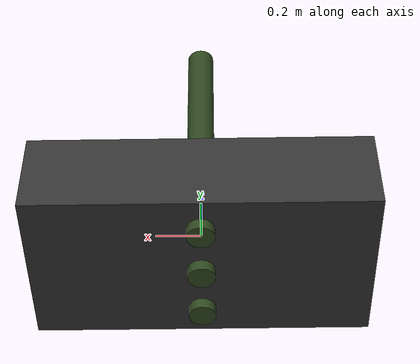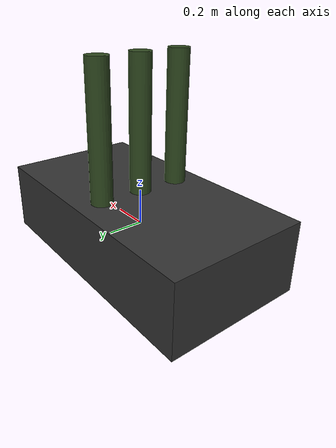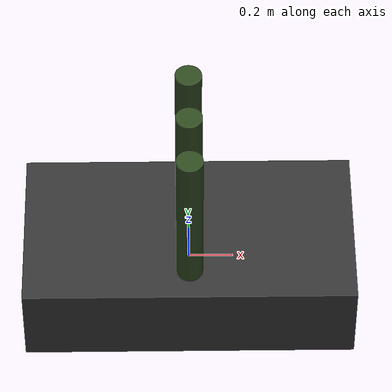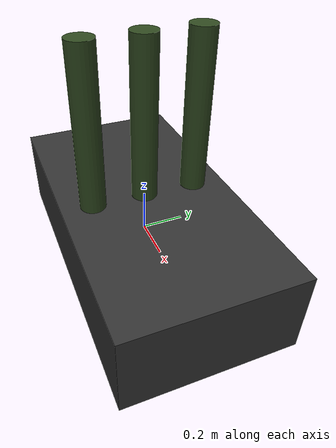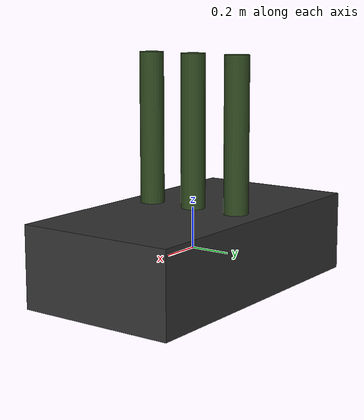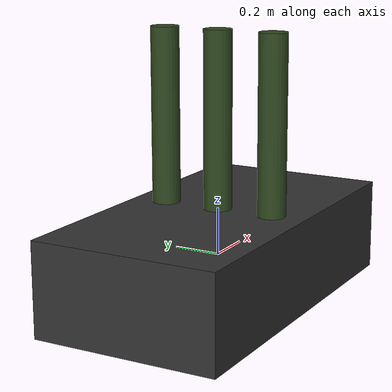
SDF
<?xml version='1.0'?>
<sdf version='1.6'>
  <model name='sam_launcher'>
    <static>true</static>
    <link name='base'>
      <pose>0 0 0 0 0 0</pose>
      <!-- Base -->
      <visual name='base_box'>
        <geometry>
          <box>
            <size>1.5 0.8 0.4</size>
          </box>
        </geometry>
        <material>
          <!-- base dark grey -->
          <ambient>0.12 0.12 0.12 1</ambient>
          <diffuse>0.2 0.2 0.2 1</diffuse>
          <specular>0.25 0.25 0.25 1</specular>
        </material>
      </visual>

      <!-- Launcher rail assembly: three missiles side-by-side -->
      <visual name='missile_1'>
        <pose>0.0 -0.25 0.35 0 0 0</pose>
        <geometry>
          <cylinder>
            <radius>0.06</radius>
            <length>1.2</length>
          </cylinder>
        </geometry>
        <material>
          <!-- missile olive/green -->
          <ambient>0.12 0.18 0.08 1</ambient>
          <diffuse>0.18 0.28 0.12 1</diffuse>
          <specular>0.05 0.05 0.05 1</specular>
        </material>
      </visual>

      <visual name='missile_2'>
        <pose>0.0 0.0 0.35 0 0 0</pose>
        <geometry>
          <cylinder>
            <radius>0.06</radius>
            <length>1.2</length>
          </cylinder>
        </geometry>
        <material>
          <ambient>0.12 0.18 0.08 1</ambient>
          <diffuse>0.18 0.28 0.12 1</diffuse>
          <specular>0.05 0.05 0.05 1</specular>
        </material>
      </visual>

      <visual name='missile_3'>
        <pose>0.0 0.25 0.35 0 0 0</pose>
        <geometry>
          <cylinder>
            <radius>0.06</radius>
            <length>1.2</length>
          </cylinder>
        </geometry>
        <material>
          <ambient>0.12 0.18 0.08 1</ambient>
          <diffuse>0.18 0.28 0.12 1</diffuse>
          <specular>0.05 0.05 0.05 1</specular>
        </material>
      </visual>

    </link>
  </model>
</sdf>
